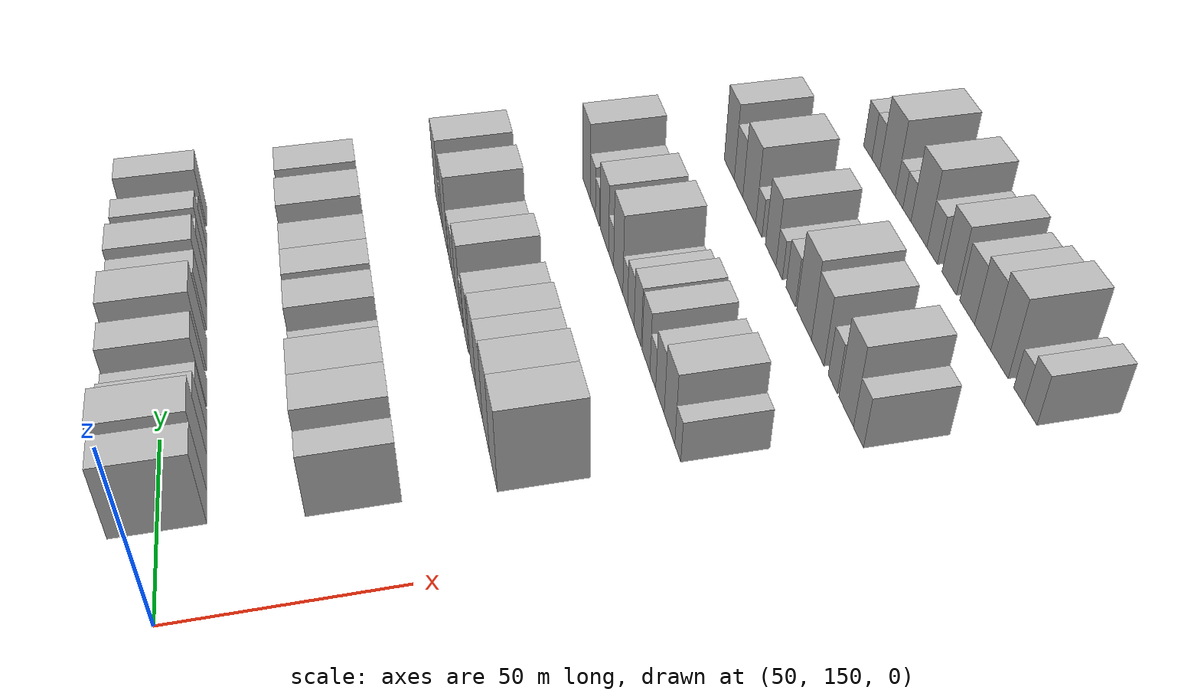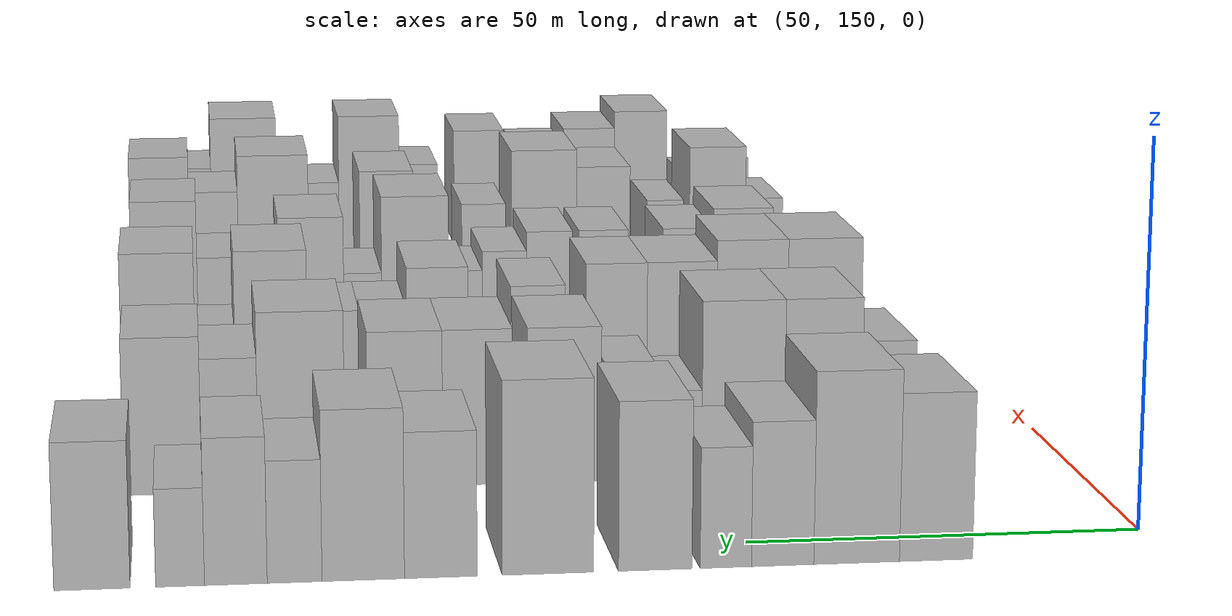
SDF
<sdf version="1.6">
 <world name="default">
  <model name="building_87">
   <static>1</static>
   <pose>50.0000 178.3747 0 0.000000 0.000000 0.000000</pose>
   <link name="link">
    <pose>0 0 10.50 0 0 0</pose>
    <collision name="collision"><geometry><box><size>20.0000 9.0780 21.0000</size></box></geometry></collision>
    <visual name="visual">
     <cast_shadows>0</cast_shadows>
     <geometry><box><size>20.0000 9.0780 21.0000</size></box></geometry>
     <material>
      <script>
       <uri>model://HANNAS_wall/materials/scripts</uri>
       <uri>model://HANNAS_wall/materials/textures</uri>
       <name>vrc/HANNAS_wall</name>
      </script>
     </material>
    </visual>
   </link>
  </model>
  <model name="building_88">
   <static>1</static>
   <pose>50.0000 188.1990 0 0.000000 0.000000 0.000000</pose>
   <link name="link">
    <pose>0 0 12.00 0 0 0</pose>
    <collision name="collision"><geometry><box><size>20.0000 10.5706 24.0000</size></box></geometry></collision>
    <visual name="visual">
     <cast_shadows>0</cast_shadows>
     <geometry><box><size>20.0000 10.5706 24.0000</size></box></geometry>
     <material>
      <script>
       <uri>model://HANNAS_wall/materials/scripts</uri>
       <uri>model://HANNAS_wall/materials/textures</uri>
       <name>vrc/HANNAS_wall</name>
      </script>
     </material>
    </visual>
   </link>
  </model>
  <model name="building_89">
   <static>1</static>
   <pose>50.0000 197.3126 0 0.000000 0.000000 0.000000</pose>
   <link name="link">
    <pose>0 0 9.00 0 0 0</pose>
    <collision name="collision"><geometry><box><size>20.0000 7.6567 18.0000</size></box></geometry></collision>
    <visual name="visual">
     <cast_shadows>0</cast_shadows>
     <geometry><box><size>20.0000 7.6567 18.0000</size></box></geometry>
     <material>
      <script>
       <uri>model://HANNAS_wall/materials/scripts</uri>
       <uri>model://HANNAS_wall/materials/textures</uri>
       <name>vrc/HANNAS_wall</name>
      </script>
     </material>
    </visual>
   </link>
  </model>
  <model name="building_90">
   <static>1</static>
   <pose>50.0000 204.2741 0 0.000000 0.000000 0.000000</pose>
   <link name="link">
    <pose>0 0 7.50 0 0 0</pose>
    <collision name="collision"><geometry><box><size>20.0000 6.2663 15.0000</size></box></geometry></collision>
    <visual name="visual">
     <cast_shadows>0</cast_shadows>
     <geometry><box><size>20.0000 6.2663 15.0000</size></box></geometry>
     <material>
      <script>
       <uri>model://HANNAS_wall/materials/scripts</uri>
       <uri>model://HANNAS_wall/materials/textures</uri>
       <name>vrc/HANNAS_wall</name>
      </script>
     </material>
    </visual>
   </link>
  </model>
  <model name="building_91">
   <static>1</static>
   <pose>50.0000 212.8773 0 0.000000 0.000000 0.000000</pose>
   <link name="link">
    <pose>0 0 10.50 0 0 0</pose>
    <collision name="collision"><geometry><box><size>20.0000 8.9400 21.0000</size></box></geometry></collision>
    <visual name="visual">
     <cast_shadows>0</cast_shadows>
     <geometry><box><size>20.0000 8.9400 21.0000</size></box></geometry>
     <material>
      <script>
       <uri>model://HANNAS_wall/materials/scripts</uri>
       <uri>model://HANNAS_wall/materials/textures</uri>
       <name>vrc/HANNAS_wall</name>
      </script>
     </material>
    </visual>
   </link>
  </model>
  <model name="building_92">
   <static>1</static>
   <pose>50.0000 225.8697 0 0.000000 0.000000 0.000000</pose>
   <link name="link">
    <pose>0 0 12.00 0 0 0</pose>
    <collision name="collision"><geometry><box><size>20.0000 11.0448 24.0000</size></box></geometry></collision>
    <visual name="visual">
     <cast_shadows>0</cast_shadows>
     <geometry><box><size>20.0000 11.0448 24.0000</size></box></geometry>
     <material>
      <script>
       <uri>model://HANNAS_wall/materials/scripts</uri>
       <uri>model://HANNAS_wall/materials/textures</uri>
       <name>vrc/HANNAS_wall</name>
      </script>
     </material>
    </visual>
   </link>
  </model>
  <model name="building_93">
   <static>1</static>
   <pose>50.0000 238.7472 0 0.000000 0.000000 0.000000</pose>
   <link name="link">
    <pose>0 0 9.00 0 0 0</pose>
    <collision name="collision"><geometry><box><size>20.0000 8.7102 18.0000</size></box></geometry></collision>
    <visual name="visual">
     <cast_shadows>0</cast_shadows>
     <geometry><box><size>20.0000 8.7102 18.0000</size></box></geometry>
     <material>
      <script>
       <uri>model://HANNAS_wall/materials/scripts</uri>
       <uri>model://HANNAS_wall/materials/textures</uri>
       <name>vrc/HANNAS_wall</name>
      </script>
     </material>
    </visual>
   </link>
  </model>
  <model name="building_94">
   <static>1</static>
   <pose>50.0000 248.0117 0 0.000000 0.000000 0.000000</pose>
   <link name="link">
    <pose>0 0 10.50 0 0 0</pose>
    <collision name="collision"><geometry><box><size>20.0000 9.8189 21.0000</size></box></geometry></collision>
    <visual name="visual">
     <cast_shadows>0</cast_shadows>
     <geometry><box><size>20.0000 9.8189 21.0000</size></box></geometry>
     <material>
      <script>
       <uri>model://HANNAS_wall/materials/scripts</uri>
       <uri>model://HANNAS_wall/materials/textures</uri>
       <name>vrc/HANNAS_wall</name>
      </script>
     </material>
    </visual>
   </link>
  </model>
  <model name="building_95">
   <static>1</static>
   <pose>50.0000 256.1709 0 0.000000 0.000000 0.000000</pose>
   <link name="link">
    <pose>0 0 7.50 0 0 0</pose>
    <collision name="collision"><geometry><box><size>20.0000 6.4995 15.0000</size></box></geometry></collision>
    <visual name="visual">
     <cast_shadows>0</cast_shadows>
     <geometry><box><size>20.0000 6.4995 15.0000</size></box></geometry>
     <material>
      <script>
       <uri>model://HANNAS_wall/materials/scripts</uri>
       <uri>model://HANNAS_wall/materials/textures</uri>
       <name>vrc/HANNAS_wall</name>
      </script>
     </material>
    </visual>
   </link>
  </model>
  <model name="building_96">
   <static>1</static>
   <pose>50.0000 263.1262 0 0.000000 0.000000 0.000000</pose>
   <link name="link">
    <pose>0 0 9.00 0 0 0</pose>
    <collision name="collision"><geometry><box><size>20.0000 7.4109 18.0000</size></box></geometry></collision>
    <visual name="visual">
     <cast_shadows>0</cast_shadows>
     <geometry><box><size>20.0000 7.4109 18.0000</size></box></geometry>
     <material>
      <script>
       <uri>model://HANNAS_wall/materials/scripts</uri>
       <uri>model://HANNAS_wall/materials/textures</uri>
       <name>vrc/HANNAS_wall</name>
      </script>
     </material>
    </visual>
   </link>
  </model>
  <model name="building_97">
   <static>1</static>
   <pose>50.0000 269.6995 0 0.000000 0.000000 0.000000</pose>
   <link name="link">
    <pose>0 0 6.00 0 0 0</pose>
    <collision name="collision"><geometry><box><size>20.0000 5.7357 12.0000</size></box></geometry></collision>
    <visual name="visual">
     <cast_shadows>0</cast_shadows>
     <geometry><box><size>20.0000 5.7357 12.0000</size></box></geometry>
     <material>
      <script>
       <uri>model://HANNAS_wall/materials/scripts</uri>
       <uri>model://HANNAS_wall/materials/textures</uri>
       <name>vrc/HANNAS_wall</name>
      </script>
     </material>
    </visual>
   </link>
  </model>
  <model name="building_98">
   <static>1</static>
   <pose>50.0000 280.0280 0 0.000000 0.000000 0.000000</pose>
   <link name="link">
    <pose>0 0 9.00 0 0 0</pose>
    <collision name="collision"><geometry><box><size>20.0000 8.9214 18.0000</size></box></geometry></collision>
    <visual name="visual">
     <cast_shadows>0</cast_shadows>
     <geometry><box><size>20.0000 8.9214 18.0000</size></box></geometry>
     <material>
      <script>
       <uri>model://HANNAS_wall/materials/scripts</uri>
       <uri>model://HANNAS_wall/materials/textures</uri>
       <name>vrc/HANNAS_wall</name>
      </script>
     </material>
    </visual>
   </link>
  </model>
  <model name="building_219">
   <static>1</static>
   <pose>90.0000 175.3694 0 0.000000 0.000000 0.000000</pose>
   <link name="link">
    <pose>0 0 9.00 0 0 0</pose>
    <collision name="collision"><geometry><box><size>20.0000 7.3068 18.0000</size></box></geometry></collision>
    <visual name="visual">
     <cast_shadows>0</cast_shadows>
     <geometry><box><size>20.0000 7.3068 18.0000</size></box></geometry>
     <material>
      <script>
       <uri>model://HANNAS_wall/materials/scripts</uri>
       <uri>model://HANNAS_wall/materials/textures</uri>
       <name>vrc/HANNAS_wall</name>
      </script>
     </material>
    </visual>
   </link>
  </model>
  <model name="building_220">
   <static>1</static>
   <pose>90.0000 184.2581 0 0.000000 0.000000 0.000000</pose>
   <link name="link">
    <pose>0 0 12.00 0 0 0</pose>
    <collision name="collision"><geometry><box><size>20.0000 10.4707 24.0000</size></box></geometry></collision>
    <visual name="visual">
     <cast_shadows>0</cast_shadows>
     <geometry><box><size>20.0000 10.4707 24.0000</size></box></geometry>
     <material>
      <script>
       <uri>model://HANNAS_wall/materials/scripts</uri>
       <uri>model://HANNAS_wall/materials/textures</uri>
       <name>vrc/HANNAS_wall</name>
      </script>
     </material>
    </visual>
   </link>
  </model>
  <model name="building_221">
   <static>1</static>
   <pose>90.0000 195.0638 0 0.000000 0.000000 0.000000</pose>
   <link name="link">
    <pose>0 0 12.00 0 0 0</pose>
    <collision name="collision"><geometry><box><size>20.0000 11.1407 24.0000</size></box></geometry></collision>
    <visual name="visual">
     <cast_shadows>0</cast_shadows>
     <geometry><box><size>20.0000 11.1407 24.0000</size></box></geometry>
     <material>
      <script>
       <uri>model://HANNAS_wall/materials/scripts</uri>
       <uri>model://HANNAS_wall/materials/textures</uri>
       <name>vrc/HANNAS_wall</name>
      </script>
     </material>
    </visual>
   </link>
  </model>
  <model name="building_222">
   <static>1</static>
   <pose>90.0000 203.5149 0 0.000000 0.000000 0.000000</pose>
   <link name="link">
    <pose>0 0 6.00 0 0 0</pose>
    <collision name="collision"><geometry><box><size>20.0000 5.7615 12.0000</size></box></geometry></collision>
    <visual name="visual">
     <cast_shadows>0</cast_shadows>
     <geometry><box><size>20.0000 5.7615 12.0000</size></box></geometry>
     <material>
      <script>
       <uri>model://HANNAS_wall/materials/scripts</uri>
       <uri>model://HANNAS_wall/materials/textures</uri>
       <name>vrc/HANNAS_wall</name>
      </script>
     </material>
    </visual>
   </link>
  </model>
  <model name="building_223">
   <static>1</static>
   <pose>90.0000 209.7560 0 0.000000 0.000000 0.000000</pose>
   <link name="link">
    <pose>0 0 7.50 0 0 0</pose>
    <collision name="collision"><geometry><box><size>20.0000 6.7207 15.0000</size></box></geometry></collision>
    <visual name="visual">
     <cast_shadows>0</cast_shadows>
     <geometry><box><size>20.0000 6.7207 15.0000</size></box></geometry>
     <material>
      <script>
       <uri>model://HANNAS_wall/materials/scripts</uri>
       <uri>model://HANNAS_wall/materials/textures</uri>
       <name>vrc/HANNAS_wall</name>
      </script>
     </material>
    </visual>
   </link>
  </model>
  <model name="building_224">
   <static>1</static>
   <pose>90.0000 219.0186 0 0.000000 0.000000 0.000000</pose>
   <link name="link">
    <pose>0 0 10.50 0 0 0</pose>
    <collision name="collision"><geometry><box><size>20.0000 9.8047 21.0000</size></box></geometry></collision>
    <visual name="visual">
     <cast_shadows>0</cast_shadows>
     <geometry><box><size>20.0000 9.8047 21.0000</size></box></geometry>
     <material>
      <script>
       <uri>model://HANNAS_wall/materials/scripts</uri>
       <uri>model://HANNAS_wall/materials/textures</uri>
       <name>vrc/HANNAS_wall</name>
      </script>
     </material>
    </visual>
   </link>
  </model>
  <model name="building_225">
   <static>1</static>
   <pose>90.0000 230.5585 0 0.000000 0.000000 0.000000</pose>
   <link name="link">
    <pose>0 0 10.50 0 0 0</pose>
    <collision name="collision"><geometry><box><size>20.0000 9.2750 21.0000</size></box></geometry></collision>
    <visual name="visual">
     <cast_shadows>0</cast_shadows>
     <geometry><box><size>20.0000 9.2750 21.0000</size></box></geometry>
     <material>
      <script>
       <uri>model://HANNAS_wall/materials/scripts</uri>
       <uri>model://HANNAS_wall/materials/textures</uri>
       <name>vrc/HANNAS_wall</name>
      </script>
     </material>
    </visual>
   </link>
  </model>
  <model name="building_226">
   <static>1</static>
   <pose>90.0000 240.1364 0 0.000000 0.000000 0.000000</pose>
   <link name="link">
    <pose>0 0 10.50 0 0 0</pose>
    <collision name="collision"><geometry><box><size>20.0000 9.8808 21.0000</size></box></geometry></collision>
    <visual name="visual">
     <cast_shadows>0</cast_shadows>
     <geometry><box><size>20.0000 9.8808 21.0000</size></box></geometry>
     <material>
      <script>
       <uri>model://HANNAS_wall/materials/scripts</uri>
       <uri>model://HANNAS_wall/materials/textures</uri>
       <name>vrc/HANNAS_wall</name>
      </script>
     </material>
    </visual>
   </link>
  </model>
  <model name="building_227">
   <static>1</static>
   <pose>90.0000 253.7581 0 0.000000 0.000000 0.000000</pose>
   <link name="link">
    <pose>0 0 12.00 0 0 0</pose>
    <collision name="collision"><geometry><box><size>20.0000 11.3627 24.0000</size></box></geometry></collision>
    <visual name="visual">
     <cast_shadows>0</cast_shadows>
     <geometry><box><size>20.0000 11.3627 24.0000</size></box></geometry>
     <material>
      <script>
       <uri>model://HANNAS_wall/materials/scripts</uri>
       <uri>model://HANNAS_wall/materials/textures</uri>
       <name>vrc/HANNAS_wall</name>
      </script>
     </material>
    </visual>
   </link>
  </model>
  <model name="building_228">
   <static>1</static>
   <pose>90.0000 263.1406 0 0.000000 0.000000 0.000000</pose>
   <link name="link">
    <pose>0 0 9.00 0 0 0</pose>
    <collision name="collision"><geometry><box><size>20.0000 7.4023 18.0000</size></box></geometry></collision>
    <visual name="visual">
     <cast_shadows>0</cast_shadows>
     <geometry><box><size>20.0000 7.4023 18.0000</size></box></geometry>
     <material>
      <script>
       <uri>model://HANNAS_wall/materials/scripts</uri>
       <uri>model://HANNAS_wall/materials/textures</uri>
       <name>vrc/HANNAS_wall</name>
      </script>
     </material>
    </visual>
   </link>
  </model>
  <model name="building_229">
   <static>1</static>
   <pose>90.0000 271.8933 0 0.000000 0.000000 0.000000</pose>
   <link name="link">
    <pose>0 0 10.50 0 0 0</pose>
    <collision name="collision"><geometry><box><size>20.0000 10.1031 21.0000</size></box></geometry></collision>
    <visual name="visual">
     <cast_shadows>0</cast_shadows>
     <geometry><box><size>20.0000 10.1031 21.0000</size></box></geometry>
     <material>
      <script>
       <uri>model://HANNAS_wall/materials/scripts</uri>
       <uri>model://HANNAS_wall/materials/textures</uri>
       <name>vrc/HANNAS_wall</name>
      </script>
     </material>
    </visual>
   </link>
  </model>
  <model name="building_349">
   <static>1</static>
   <pose>130.0000 175.9488 0 0.000000 0.000000 0.000000</pose>
   <link name="link">
    <pose>0 0 12.00 0 0 0</pose>
    <collision name="collision"><geometry><box><size>20.0000 10.9730 24.0000</size></box></geometry></collision>
    <visual name="visual">
     <cast_shadows>0</cast_shadows>
     <geometry><box><size>20.0000 10.9730 24.0000</size></box></geometry>
     <material>
      <script>
       <uri>model://HANNAS_wall/materials/scripts</uri>
       <uri>model://HANNAS_wall/materials/textures</uri>
       <name>vrc/HANNAS_wall</name>
      </script>
     </material>
    </visual>
   </link>
  </model>
  <model name="building_350">
   <static>1</static>
   <pose>130.0000 186.6604 0 0.000000 0.000000 0.000000</pose>
   <link name="link">
    <pose>0 0 12.00 0 0 0</pose>
    <collision name="collision"><geometry><box><size>20.0000 10.4503 24.0000</size></box></geometry></collision>
    <visual name="visual">
     <cast_shadows>0</cast_shadows>
     <geometry><box><size>20.0000 10.4503 24.0000</size></box></geometry>
     <material>
      <script>
       <uri>model://HANNAS_wall/materials/scripts</uri>
       <uri>model://HANNAS_wall/materials/textures</uri>
       <name>vrc/HANNAS_wall</name>
      </script>
     </material>
    </visual>
   </link>
  </model>
  <model name="building_351">
   <static>1</static>
   <pose>130.0000 197.0051 0 0.000000 0.000000 0.000000</pose>
   <link name="link">
    <pose>0 0 10.50 0 0 0</pose>
    <collision name="collision"><geometry><box><size>20.0000 10.2392 21.0000</size></box></geometry></collision>
    <visual name="visual">
     <cast_shadows>0</cast_shadows>
     <geometry><box><size>20.0000 10.2392 21.0000</size></box></geometry>
     <material>
      <script>
       <uri>model://HANNAS_wall/materials/scripts</uri>
       <uri>model://HANNAS_wall/materials/textures</uri>
       <name>vrc/HANNAS_wall</name>
      </script>
     </material>
    </visual>
   </link>
  </model>
  <model name="building_352">
   <static>1</static>
   <pose>130.0000 206.5875 0 0.000000 0.000000 0.000000</pose>
   <link name="link">
    <pose>0 0 10.50 0 0 0</pose>
    <collision name="collision"><geometry><box><size>20.0000 8.9256 21.0000</size></box></geometry></collision>
    <visual name="visual">
     <cast_shadows>0</cast_shadows>
     <geometry><box><size>20.0000 8.9256 21.0000</size></box></geometry>
     <material>
      <script>
       <uri>model://HANNAS_wall/materials/scripts</uri>
       <uri>model://HANNAS_wall/materials/textures</uri>
       <name>vrc/HANNAS_wall</name>
      </script>
     </material>
    </visual>
   </link>
  </model>
  <model name="building_353">
   <static>1</static>
   <pose>130.0000 218.0431 0 0.000000 0.000000 0.000000</pose>
   <link name="link">
    <pose>0 0 9.00 0 0 0</pose>
    <collision name="collision"><geometry><box><size>20.0000 7.9856 18.0000</size></box></geometry></collision>
    <visual name="visual">
     <cast_shadows>0</cast_shadows>
     <geometry><box><size>20.0000 7.9856 18.0000</size></box></geometry>
     <material>
      <script>
       <uri>model://HANNAS_wall/materials/scripts</uri>
       <uri>model://HANNAS_wall/materials/textures</uri>
       <name>vrc/HANNAS_wall</name>
      </script>
     </material>
    </visual>
   </link>
  </model>
  <model name="building_354">
   <static>1</static>
   <pose>130.0000 225.5867 0 0.000000 0.000000 0.000000</pose>
   <link name="link">
    <pose>0 0 6.00 0 0 0</pose>
    <collision name="collision"><geometry><box><size>20.0000 5.1015 12.0000</size></box></geometry></collision>
    <visual name="visual">
     <cast_shadows>0</cast_shadows>
     <geometry><box><size>20.0000 5.1015 12.0000</size></box></geometry>
     <material>
      <script>
       <uri>model://HANNAS_wall/materials/scripts</uri>
       <uri>model://HANNAS_wall/materials/textures</uri>
       <name>vrc/HANNAS_wall</name>
      </script>
     </material>
    </visual>
   </link>
  </model>
  <model name="building_355">
   <static>1</static>
   <pose>130.0000 232.5642 0 0.000000 0.000000 0.000000</pose>
   <link name="link">
    <pose>0 0 10.50 0 0 0</pose>
    <collision name="collision"><geometry><box><size>20.0000 8.8535 21.0000</size></box></geometry></collision>
    <visual name="visual">
     <cast_shadows>0</cast_shadows>
     <geometry><box><size>20.0000 8.8535 21.0000</size></box></geometry>
     <material>
      <script>
       <uri>model://HANNAS_wall/materials/scripts</uri>
       <uri>model://HANNAS_wall/materials/textures</uri>
       <name>vrc/HANNAS_wall</name>
      </script>
     </material>
    </visual>
   </link>
  </model>
  <model name="building_356">
   <static>1</static>
   <pose>130.0000 240.4110 0 0.000000 0.000000 0.000000</pose>
   <link name="link">
    <pose>0 0 7.50 0 0 0</pose>
    <collision name="collision"><geometry><box><size>20.0000 6.8402 15.0000</size></box></geometry></collision>
    <visual name="visual">
     <cast_shadows>0</cast_shadows>
     <geometry><box><size>20.0000 6.8402 15.0000</size></box></geometry>
     <material>
      <script>
       <uri>model://HANNAS_wall/materials/scripts</uri>
       <uri>model://HANNAS_wall/materials/textures</uri>
       <name>vrc/HANNAS_wall</name>
      </script>
     </material>
    </visual>
   </link>
  </model>
  <model name="building_357">
   <static>1</static>
   <pose>130.0000 247.0475 0 0.000000 0.000000 0.000000</pose>
   <link name="link">
    <pose>0 0 7.50 0 0 0</pose>
    <collision name="collision"><geometry><box><size>20.0000 6.4327 15.0000</size></box></geometry></collision>
    <visual name="visual">
     <cast_shadows>0</cast_shadows>
     <geometry><box><size>20.0000 6.4327 15.0000</size></box></geometry>
     <material>
      <script>
       <uri>model://HANNAS_wall/materials/scripts</uri>
       <uri>model://HANNAS_wall/materials/textures</uri>
       <name>vrc/HANNAS_wall</name>
      </script>
     </material>
    </visual>
   </link>
  </model>
  <model name="building_358">
   <static>1</static>
   <pose>130.0000 256.4493 0 0.000000 0.000000 0.000000</pose>
   <link name="link">
    <pose>0 0 12.00 0 0 0</pose>
    <collision name="collision"><geometry><box><size>20.0000 10.3709 24.0000</size></box></geometry></collision>
    <visual name="visual">
     <cast_shadows>0</cast_shadows>
     <geometry><box><size>20.0000 10.3709 24.0000</size></box></geometry>
     <material>
      <script>
       <uri>model://HANNAS_wall/materials/scripts</uri>
       <uri>model://HANNAS_wall/materials/textures</uri>
       <name>vrc/HANNAS_wall</name>
      </script>
     </material>
    </visual>
   </link>
  </model>
  <model name="building_359">
   <static>1</static>
   <pose>130.0000 264.4469 0 0.000000 0.000000 0.000000</pose>
   <link name="link">
    <pose>0 0 6.00 0 0 0</pose>
    <collision name="collision"><geometry><box><size>20.0000 5.6244 12.0000</size></box></geometry></collision>
    <visual name="visual">
     <cast_shadows>0</cast_shadows>
     <geometry><box><size>20.0000 5.6244 12.0000</size></box></geometry>
     <material>
      <script>
       <uri>model://HANNAS_wall/materials/scripts</uri>
       <uri>model://HANNAS_wall/materials/textures</uri>
       <name>vrc/HANNAS_wall</name>
      </script>
     </material>
    </visual>
   </link>
  </model>
  <model name="building_360">
   <static>1</static>
   <pose>130.0000 272.4987 0 0.000000 0.000000 0.000000</pose>
   <link name="link">
    <pose>0 0 12.00 0 0 0</pose>
    <collision name="collision"><geometry><box><size>20.0000 10.4792 24.0000</size></box></geometry></collision>
    <visual name="visual">
     <cast_shadows>0</cast_shadows>
     <geometry><box><size>20.0000 10.4792 24.0000</size></box></geometry>
     <material>
      <script>
       <uri>model://HANNAS_wall/materials/scripts</uri>
       <uri>model://HANNAS_wall/materials/textures</uri>
       <name>vrc/HANNAS_wall</name>
      </script>
     </material>
    </visual>
   </link>
  </model>
  <model name="building_486">
   <static>1</static>
   <pose>170.0000 173.5133 0 0.000000 0.000000 0.000000</pose>
   <link name="link">
    <pose>0 0 6.00 0 0 0</pose>
    <collision name="collision"><geometry><box><size>20.0000 5.2123 12.0000</size></box></geometry></collision>
    <visual name="visual">
     <cast_shadows>0</cast_shadows>
     <geometry><box><size>20.0000 5.2123 12.0000</size></box></geometry>
     <material>
      <script>
       <uri>model://HANNAS_wall/materials/scripts</uri>
       <uri>model://HANNAS_wall/materials/textures</uri>
       <name>vrc/HANNAS_wall</name>
      </script>
     </material>
    </visual>
   </link>
  </model>
  <model name="building_487">
   <static>1</static>
   <pose>170.0000 180.9115 0 0.000000 0.000000 0.000000</pose>
   <link name="link">
    <pose>0 0 10.50 0 0 0</pose>
    <collision name="collision"><geometry><box><size>20.0000 9.5840 21.0000</size></box></geometry></collision>
    <visual name="visual">
     <cast_shadows>0</cast_shadows>
     <geometry><box><size>20.0000 9.5840 21.0000</size></box></geometry>
     <material>
      <script>
       <uri>model://HANNAS_wall/materials/scripts</uri>
       <uri>model://HANNAS_wall/materials/textures</uri>
       <name>vrc/HANNAS_wall</name>
      </script>
     </material>
    </visual>
   </link>
  </model>
  <model name="building_488">
   <static>1</static>
   <pose>170.0000 189.6922 0 0.000000 0.000000 0.000000</pose>
   <link name="link">
    <pose>0 0 9.00 0 0 0</pose>
    <collision name="collision"><geometry><box><size>20.0000 7.9773 18.0000</size></box></geometry></collision>
    <visual name="visual">
     <cast_shadows>0</cast_shadows>
     <geometry><box><size>20.0000 7.9773 18.0000</size></box></geometry>
     <material>
      <script>
       <uri>model://HANNAS_wall/materials/scripts</uri>
       <uri>model://HANNAS_wall/materials/textures</uri>
       <name>vrc/HANNAS_wall</name>
      </script>
     </material>
    </visual>
   </link>
  </model>
  <model name="building_489">
   <static>1</static>
   <pose>170.0000 196.4712 0 0.000000 0.000000 0.000000</pose>
   <link name="link">
    <pose>0 0 6.00 0 0 0</pose>
    <collision name="collision"><geometry><box><size>20.0000 5.5807 12.0000</size></box></geometry></collision>
    <visual name="visual">
     <cast_shadows>0</cast_shadows>
     <geometry><box><size>20.0000 5.5807 12.0000</size></box></geometry>
     <material>
      <script>
       <uri>model://HANNAS_wall/materials/scripts</uri>
       <uri>model://HANNAS_wall/materials/textures</uri>
       <name>vrc/HANNAS_wall</name>
      </script>
     </material>
    </visual>
   </link>
  </model>
  <model name="building_490">
   <static>1</static>
   <pose>170.0000 203.1555 0 0.000000 0.000000 0.000000</pose>
   <link name="link">
    <pose>0 0 9.00 0 0 0</pose>
    <collision name="collision"><geometry><box><size>20.0000 7.7880 18.0000</size></box></geometry></collision>
    <visual name="visual">
     <cast_shadows>0</cast_shadows>
     <geometry><box><size>20.0000 7.7880 18.0000</size></box></geometry>
     <material>
      <script>
       <uri>model://HANNAS_wall/materials/scripts</uri>
       <uri>model://HANNAS_wall/materials/textures</uri>
       <name>vrc/HANNAS_wall</name>
      </script>
     </material>
    </visual>
   </link>
  </model>
  <model name="building_491">
   <static>1</static>
   <pose>170.0000 211.6984 0 0.000000 0.000000 0.000000</pose>
   <link name="link">
    <pose>0 0 9.00 0 0 0</pose>
    <collision name="collision"><geometry><box><size>20.0000 7.2979 18.0000</size></box></geometry></collision>
    <visual name="visual">
     <cast_shadows>0</cast_shadows>
     <geometry><box><size>20.0000 7.2979 18.0000</size></box></geometry>
     <material>
      <script>
       <uri>model://HANNAS_wall/materials/scripts</uri>
       <uri>model://HANNAS_wall/materials/textures</uri>
       <name>vrc/HANNAS_wall</name>
      </script>
     </material>
    </visual>
   </link>
  </model>
  <model name="building_492">
   <static>1</static>
   <pose>170.0000 218.8263 0 0.000000 0.000000 0.000000</pose>
   <link name="link">
    <pose>0 0 7.50 0 0 0</pose>
    <collision name="collision"><geometry><box><size>20.0000 6.9579 15.0000</size></box></geometry></collision>
    <visual name="visual">
     <cast_shadows>0</cast_shadows>
     <geometry><box><size>20.0000 6.9579 15.0000</size></box></geometry>
     <material>
      <script>
       <uri>model://HANNAS_wall/materials/scripts</uri>
       <uri>model://HANNAS_wall/materials/textures</uri>
       <name>vrc/HANNAS_wall</name>
      </script>
     </material>
    </visual>
   </link>
  </model>
  <model name="building_493">
   <static>1</static>
   <pose>170.0000 224.9463 0 0.000000 0.000000 0.000000</pose>
   <link name="link">
    <pose>0 0 6.00 0 0 0</pose>
    <collision name="collision"><geometry><box><size>20.0000 5.2821 12.0000</size></box></geometry></collision>
    <visual name="visual">
     <cast_shadows>0</cast_shadows>
     <geometry><box><size>20.0000 5.2821 12.0000</size></box></geometry>
     <material>
      <script>
       <uri>model://HANNAS_wall/materials/scripts</uri>
       <uri>model://HANNAS_wall/materials/textures</uri>
       <name>vrc/HANNAS_wall</name>
      </script>
     </material>
    </visual>
   </link>
  </model>
  <model name="building_494">
   <static>1</static>
   <pose>170.0000 232.8316 0 0.000000 0.000000 0.000000</pose>
   <link name="link">
    <pose>0 0 12.00 0 0 0</pose>
    <collision name="collision"><geometry><box><size>20.0000 10.4885 24.0000</size></box></geometry></collision>
    <visual name="visual">
     <cast_shadows>0</cast_shadows>
     <geometry><box><size>20.0000 10.4885 24.0000</size></box></geometry>
     <material>
      <script>
       <uri>model://HANNAS_wall/materials/scripts</uri>
       <uri>model://HANNAS_wall/materials/textures</uri>
       <name>vrc/HANNAS_wall</name>
      </script>
     </material>
    </visual>
   </link>
  </model>
  <model name="building_495">
   <static>1</static>
   <pose>170.0000 241.0405 0 0.000000 0.000000 0.000000</pose>
   <link name="link">
    <pose>0 0 6.00 0 0 0</pose>
    <collision name="collision"><geometry><box><size>20.0000 5.9293 12.0000</size></box></geometry></collision>
    <visual name="visual">
     <cast_shadows>0</cast_shadows>
     <geometry><box><size>20.0000 5.9293 12.0000</size></box></geometry>
     <material>
      <script>
       <uri>model://HANNAS_wall/materials/scripts</uri>
       <uri>model://HANNAS_wall/materials/textures</uri>
       <name>vrc/HANNAS_wall</name>
      </script>
     </material>
    </visual>
   </link>
  </model>
  <model name="building_496">
   <static>1</static>
   <pose>170.0000 249.0771 0 0.000000 0.000000 0.000000</pose>
   <link name="link">
    <pose>0 0 10.50 0 0 0</pose>
    <collision name="collision"><geometry><box><size>20.0000 10.1438 21.0000</size></box></geometry></collision>
    <visual name="visual">
     <cast_shadows>0</cast_shadows>
     <geometry><box><size>20.0000 10.1438 21.0000</size></box></geometry>
     <material>
      <script>
       <uri>model://HANNAS_wall/materials/scripts</uri>
       <uri>model://HANNAS_wall/materials/textures</uri>
       <name>vrc/HANNAS_wall</name>
      </script>
     </material>
    </visual>
   </link>
  </model>
  <model name="building_497">
   <static>1</static>
   <pose>170.0000 257.6764 0 0.000000 0.000000 0.000000</pose>
   <link name="link">
    <pose>0 0 6.00 0 0 0</pose>
    <collision name="collision"><geometry><box><size>20.0000 5.0547 12.0000</size></box></geometry></collision>
    <visual name="visual">
     <cast_shadows>0</cast_shadows>
     <geometry><box><size>20.0000 5.0547 12.0000</size></box></geometry>
     <material>
      <script>
       <uri>model://HANNAS_wall/materials/scripts</uri>
       <uri>model://HANNAS_wall/materials/textures</uri>
       <name>vrc/HANNAS_wall</name>
      </script>
     </material>
    </visual>
   </link>
  </model>
  <model name="building_498">
   <static>1</static>
   <pose>170.0000 263.4415 0 0.000000 0.000000 0.000000</pose>
   <link name="link">
    <pose>0 0 7.50 0 0 0</pose>
    <collision name="collision"><geometry><box><size>20.0000 6.4756 15.0000</size></box></geometry></collision>
    <visual name="visual">
     <cast_shadows>0</cast_shadows>
     <geometry><box><size>20.0000 6.4756 15.0000</size></box></geometry>
     <material>
      <script>
       <uri>model://HANNAS_wall/materials/scripts</uri>
       <uri>model://HANNAS_wall/materials/textures</uri>
       <name>vrc/HANNAS_wall</name>
      </script>
     </material>
    </visual>
   </link>
  </model>
  <model name="building_499">
   <static>1</static>
   <pose>170.0000 271.7407 0 0.000000 0.000000 0.000000</pose>
   <link name="link">
    <pose>0 0 12.00 0 0 0</pose>
    <collision name="collision"><geometry><box><size>20.0000 10.1228 24.0000</size></box></geometry></collision>
    <visual name="visual">
     <cast_shadows>0</cast_shadows>
     <geometry><box><size>20.0000 10.1228 24.0000</size></box></geometry>
     <material>
      <script>
       <uri>model://HANNAS_wall/materials/scripts</uri>
       <uri>model://HANNAS_wall/materials/textures</uri>
       <name>vrc/HANNAS_wall</name>
      </script>
     </material>
    </visual>
   </link>
  </model>
  <model name="building_629">
   <static>1</static>
   <pose>210.0000 170.1546 0 0.000000 0.000000 0.000000</pose>
   <link name="link">
    <pose>0 0 7.50 0 0 0</pose>
    <collision name="collision"><geometry><box><size>20.0000 6.4109 15.0000</size></box></geometry></collision>
    <visual name="visual">
     <cast_shadows>0</cast_shadows>
     <geometry><box><size>20.0000 6.4109 15.0000</size></box></geometry>
     <material>
      <script>
       <uri>model://HANNAS_wall/materials/scripts</uri>
       <uri>model://HANNAS_wall/materials/textures</uri>
       <name>vrc/HANNAS_wall</name>
      </script>
     </material>
    </visual>
   </link>
  </model>
  <model name="building_630">
   <static>1</static>
   <pose>210.0000 178.2022 0 0.000000 0.000000 0.000000</pose>
   <link name="link">
    <pose>0 0 12.00 0 0 0</pose>
    <collision name="collision"><geometry><box><size>20.0000 9.6844 24.0000</size></box></geometry></collision>
    <visual name="visual">
     <cast_shadows>0</cast_shadows>
     <geometry><box><size>20.0000 9.6844 24.0000</size></box></geometry>
     <material>
      <script>
       <uri>model://HANNAS_wall/materials/scripts</uri>
       <uri>model://HANNAS_wall/materials/textures</uri>
       <name>vrc/HANNAS_wall</name>
      </script>
     </material>
    </visual>
   </link>
  </model>
  <model name="building_631">
   <static>1</static>
   <pose>210.0000 187.1664 0 0.000000 0.000000 0.000000</pose>
   <link name="link">
    <pose>0 0 7.50 0 0 0</pose>
    <collision name="collision"><geometry><box><size>20.0000 6.2439 15.0000</size></box></geometry></collision>
    <visual name="visual">
     <cast_shadows>0</cast_shadows>
     <geometry><box><size>20.0000 6.2439 15.0000</size></box></geometry>
     <material>
      <script>
       <uri>model://HANNAS_wall/materials/scripts</uri>
       <uri>model://HANNAS_wall/materials/textures</uri>
       <name>vrc/HANNAS_wall</name>
      </script>
     </material>
    </visual>
   </link>
  </model>
  <model name="building_632">
   <static>1</static>
   <pose>210.0000 197.8502 0 0.000000 0.000000 0.000000</pose>
   <link name="link">
    <pose>0 0 10.50 0 0 0</pose>
    <collision name="collision"><geometry><box><size>20.0000 9.1239 21.0000</size></box></geometry></collision>
    <visual name="visual">
     <cast_shadows>0</cast_shadows>
     <geometry><box><size>20.0000 9.1239 21.0000</size></box></geometry>
     <material>
      <script>
       <uri>model://HANNAS_wall/materials/scripts</uri>
       <uri>model://HANNAS_wall/materials/textures</uri>
       <name>vrc/HANNAS_wall</name>
      </script>
     </material>
    </visual>
   </link>
  </model>
  <model name="building_633">
   <static>1</static>
   <pose>210.0000 207.9811 0 0.000000 0.000000 0.000000</pose>
   <link name="link">
    <pose>0 0 12.00 0 0 0</pose>
    <collision name="collision"><geometry><box><size>20.0000 11.1378 24.0000</size></box></geometry></collision>
    <visual name="visual">
     <cast_shadows>0</cast_shadows>
     <geometry><box><size>20.0000 11.1378 24.0000</size></box></geometry>
     <material>
      <script>
       <uri>model://HANNAS_wall/materials/scripts</uri>
       <uri>model://HANNAS_wall/materials/textures</uri>
       <name>vrc/HANNAS_wall</name>
      </script>
     </material>
    </visual>
   </link>
  </model>
  <model name="building_634">
   <static>1</static>
   <pose>210.0000 218.2656 0 0.000000 0.000000 0.000000</pose>
   <link name="link">
    <pose>0 0 7.50 0 0 0</pose>
    <collision name="collision"><geometry><box><size>20.0000 7.4312 15.0000</size></box></geometry></collision>
    <visual name="visual">
     <cast_shadows>0</cast_shadows>
     <geometry><box><size>20.0000 7.4312 15.0000</size></box></geometry>
     <material>
      <script>
       <uri>model://HANNAS_wall/materials/scripts</uri>
       <uri>model://HANNAS_wall/materials/textures</uri>
       <name>vrc/HANNAS_wall</name>
      </script>
     </material>
    </visual>
   </link>
  </model>
  <model name="building_635">
   <static>1</static>
   <pose>210.0000 227.6113 0 0.000000 0.000000 0.000000</pose>
   <link name="link">
    <pose>0 0 6.00 0 0 0</pose>
    <collision name="collision"><geometry><box><size>20.0000 5.2603 12.0000</size></box></geometry></collision>
    <visual name="visual">
     <cast_shadows>0</cast_shadows>
     <geometry><box><size>20.0000 5.2603 12.0000</size></box></geometry>
     <material>
      <script>
       <uri>model://HANNAS_wall/materials/scripts</uri>
       <uri>model://HANNAS_wall/materials/textures</uri>
       <name>vrc/HANNAS_wall</name>
      </script>
     </material>
    </visual>
   </link>
  </model>
  <model name="building_636">
   <static>1</static>
   <pose>210.0000 234.7338 0 0.000000 0.000000 0.000000</pose>
   <link name="link">
    <pose>0 0 10.50 0 0 0</pose>
    <collision name="collision"><geometry><box><size>20.0000 8.9847 21.0000</size></box></geometry></collision>
    <visual name="visual">
     <cast_shadows>0</cast_shadows>
     <geometry><box><size>20.0000 8.9847 21.0000</size></box></geometry>
     <material>
      <script>
       <uri>model://HANNAS_wall/materials/scripts</uri>
       <uri>model://HANNAS_wall/materials/textures</uri>
       <name>vrc/HANNAS_wall</name>
      </script>
     </material>
    </visual>
   </link>
  </model>
  <model name="building_637">
   <static>1</static>
   <pose>210.0000 245.0219 0 0.000000 0.000000 0.000000</pose>
   <link name="link">
    <pose>0 0 6.00 0 0 0</pose>
    <collision name="collision"><geometry><box><size>20.0000 5.5915 12.0000</size></box></geometry></collision>
    <visual name="visual">
     <cast_shadows>0</cast_shadows>
     <geometry><box><size>20.0000 5.5915 12.0000</size></box></geometry>
     <material>
      <script>
       <uri>model://HANNAS_wall/materials/scripts</uri>
       <uri>model://HANNAS_wall/materials/textures</uri>
       <name>vrc/HANNAS_wall</name>
      </script>
     </material>
    </visual>
   </link>
  </model>
  <model name="building_638">
   <static>1</static>
   <pose>210.0000 253.7149 0 0.000000 0.000000 0.000000</pose>
   <link name="link">
    <pose>0 0 12.00 0 0 0</pose>
    <collision name="collision"><geometry><box><size>20.0000 11.7945 24.0000</size></box></geometry></collision>
    <visual name="visual">
     <cast_shadows>0</cast_shadows>
     <geometry><box><size>20.0000 11.7945 24.0000</size></box></geometry>
     <material>
      <script>
       <uri>model://HANNAS_wall/materials/scripts</uri>
       <uri>model://HANNAS_wall/materials/textures</uri>
       <name>vrc/HANNAS_wall</name>
      </script>
     </material>
    </visual>
   </link>
  </model>
  <model name="building_639">
   <static>1</static>
   <pose>210.0000 263.6816 0 0.000000 0.000000 0.000000</pose>
   <link name="link">
    <pose>0 0 9.00 0 0 0</pose>
    <collision name="collision"><geometry><box><size>20.0000 8.1389 18.0000</size></box></geometry></collision>
    <visual name="visual">
     <cast_shadows>0</cast_shadows>
     <geometry><box><size>20.0000 8.1389 18.0000</size></box></geometry>
     <material>
      <script>
       <uri>model://HANNAS_wall/materials/scripts</uri>
       <uri>model://HANNAS_wall/materials/textures</uri>
       <name>vrc/HANNAS_wall</name>
      </script>
     </material>
    </visual>
   </link>
  </model>
  <model name="building_640">
   <static>1</static>
   <pose>210.0000 272.6583 0 0.000000 0.000000 0.000000</pose>
   <link name="link">
    <pose>0 0 12.00 0 0 0</pose>
    <collision name="collision"><geometry><box><size>20.0000 9.8144 24.0000</size></box></geometry></collision>
    <visual name="visual">
     <cast_shadows>0</cast_shadows>
     <geometry><box><size>20.0000 9.8144 24.0000</size></box></geometry>
     <material>
      <script>
       <uri>model://HANNAS_wall/materials/scripts</uri>
       <uri>model://HANNAS_wall/materials/textures</uri>
       <name>vrc/HANNAS_wall</name>
      </script>
     </material>
    </visual>
   </link>
  </model>
  <model name="building_762">
   <static>1</static>
   <pose>250.0000 169.0189 0 0.000000 0.000000 0.000000</pose>
   <link name="link">
    <pose>0 0 7.50 0 0 0</pose>
    <collision name="collision"><geometry><box><size>20.0000 6.5585 15.0000</size></box></geometry></collision>
    <visual name="visual">
     <cast_shadows>0</cast_shadows>
     <geometry><box><size>20.0000 6.5585 15.0000</size></box></geometry>
     <material>
      <script>
       <uri>model://HANNAS_wall/materials/scripts</uri>
       <uri>model://HANNAS_wall/materials/textures</uri>
       <name>vrc/HANNAS_wall</name>
      </script>
     </material>
    </visual>
   </link>
  </model>
  <model name="building_763">
   <static>1</static>
   <pose>250.0000 175.0707 0 0.000000 0.000000 0.000000</pose>
   <link name="link">
    <pose>0 0 6.00 0 0 0</pose>
    <collision name="collision"><geometry><box><size>20.0000 5.5451 12.0000</size></box></geometry></collision>
    <visual name="visual">
     <cast_shadows>0</cast_shadows>
     <geometry><box><size>20.0000 5.5451 12.0000</size></box></geometry>
     <material>
      <script>
       <uri>model://HANNAS_wall/materials/scripts</uri>
       <uri>model://HANNAS_wall/materials/textures</uri>
       <name>vrc/HANNAS_wall</name>
      </script>
     </material>
    </visual>
   </link>
  </model>
  <model name="building_764">
   <static>1</static>
   <pose>250.0000 185.6610 0 0.000000 0.000000 0.000000</pose>
   <link name="link">
    <pose>0 0 12.00 0 0 0</pose>
    <collision name="collision"><geometry><box><size>20.0000 9.6355 24.0000</size></box></geometry></collision>
    <visual name="visual">
     <cast_shadows>0</cast_shadows>
     <geometry><box><size>20.0000 9.6355 24.0000</size></box></geometry>
     <material>
      <script>
       <uri>model://HANNAS_wall/materials/scripts</uri>
       <uri>model://HANNAS_wall/materials/textures</uri>
       <name>vrc/HANNAS_wall</name>
      </script>
     </material>
    </visual>
   </link>
  </model>
  <model name="building_765">
   <static>1</static>
   <pose>250.0000 195.1398 0 0.000000 0.000000 0.000000</pose>
   <link name="link">
    <pose>0 0 10.50 0 0 0</pose>
    <collision name="collision"><geometry><box><size>20.0000 9.3220 21.0000</size></box></geometry></collision>
    <visual name="visual">
     <cast_shadows>0</cast_shadows>
     <geometry><box><size>20.0000 9.3220 21.0000</size></box></geometry>
     <material>
      <script>
       <uri>model://HANNAS_wall/materials/scripts</uri>
       <uri>model://HANNAS_wall/materials/textures</uri>
       <name>vrc/HANNAS_wall</name>
      </script>
     </material>
    </visual>
   </link>
  </model>
  <model name="building_766">
   <static>1</static>
   <pose>250.0000 204.2901 0 0.000000 0.000000 0.000000</pose>
   <link name="link">
    <pose>0 0 9.00 0 0 0</pose>
    <collision name="collision"><geometry><box><size>20.0000 8.9786 18.0000</size></box></geometry></collision>
    <visual name="visual">
     <cast_shadows>0</cast_shadows>
     <geometry><box><size>20.0000 8.9786 18.0000</size></box></geometry>
     <material>
      <script>
       <uri>model://HANNAS_wall/materials/scripts</uri>
       <uri>model://HANNAS_wall/materials/textures</uri>
       <name>vrc/HANNAS_wall</name>
      </script>
     </material>
    </visual>
   </link>
  </model>
  <model name="building_767">
   <static>1</static>
   <pose>250.0000 215.3196 0 0.000000 0.000000 0.000000</pose>
   <link name="link">
    <pose>0 0 10.50 0 0 0</pose>
    <collision name="collision"><geometry><box><size>20.0000 9.0805 21.0000</size></box></geometry></collision>
    <visual name="visual">
     <cast_shadows>0</cast_shadows>
     <geometry><box><size>20.0000 9.0805 21.0000</size></box></geometry>
     <material>
      <script>
       <uri>model://HANNAS_wall/materials/scripts</uri>
       <uri>model://HANNAS_wall/materials/textures</uri>
       <name>vrc/HANNAS_wall</name>
      </script>
     </material>
    </visual>
   </link>
  </model>
  <model name="building_768">
   <static>1</static>
   <pose>250.0000 226.3320 0 0.000000 0.000000 0.000000</pose>
   <link name="link">
    <pose>0 0 7.50 0 0 0</pose>
    <collision name="collision"><geometry><box><size>20.0000 6.9442 15.0000</size></box></geometry></collision>
    <visual name="visual">
     <cast_shadows>0</cast_shadows>
     <geometry><box><size>20.0000 6.9442 15.0000</size></box></geometry>
     <material>
      <script>
       <uri>model://HANNAS_wall/materials/scripts</uri>
       <uri>model://HANNAS_wall/materials/textures</uri>
       <name>vrc/HANNAS_wall</name>
      </script>
     </material>
    </visual>
   </link>
  </model>
  <model name="building_769">
   <static>1</static>
   <pose>250.0000 235.2764 0 0.000000 0.000000 0.000000</pose>
   <link name="link">
    <pose>0 0 12.00 0 0 0</pose>
    <collision name="collision"><geometry><box><size>20.0000 10.9446 24.0000</size></box></geometry></collision>
    <visual name="visual">
     <cast_shadows>0</cast_shadows>
     <geometry><box><size>20.0000 10.9446 24.0000</size></box></geometry>
     <material>
      <script>
       <uri>model://HANNAS_wall/materials/scripts</uri>
       <uri>model://HANNAS_wall/materials/textures</uri>
       <name>vrc/HANNAS_wall</name>
      </script>
     </material>
    </visual>
   </link>
  </model>
  <model name="building_770">
   <static>1</static>
   <pose>250.0000 243.6268 0 0.000000 0.000000 0.000000</pose>
   <link name="link">
    <pose>0 0 6.00 0 0 0</pose>
    <collision name="collision"><geometry><box><size>20.0000 5.7561 12.0000</size></box></geometry></collision>
    <visual name="visual">
     <cast_shadows>0</cast_shadows>
     <geometry><box><size>20.0000 5.7561 12.0000</size></box></geometry>
     <material>
      <script>
       <uri>model://HANNAS_wall/materials/scripts</uri>
       <uri>model://HANNAS_wall/materials/textures</uri>
       <name>vrc/HANNAS_wall</name>
      </script>
     </material>
    </visual>
   </link>
  </model>
  <model name="building_771">
   <static>1</static>
   <pose>250.0000 249.2343 0 0.000000 0.000000 0.000000</pose>
   <link name="link">
    <pose>0 0 6.00 0 0 0</pose>
    <collision name="collision"><geometry><box><size>20.0000 5.4590 12.0000</size></box></geometry></collision>
    <visual name="visual">
     <cast_shadows>0</cast_shadows>
     <geometry><box><size>20.0000 5.4590 12.0000</size></box></geometry>
     <material>
      <script>
       <uri>model://HANNAS_wall/materials/scripts</uri>
       <uri>model://HANNAS_wall/materials/textures</uri>
       <name>vrc/HANNAS_wall</name>
      </script>
     </material>
    </visual>
   </link>
  </model>
  <model name="building_772">
   <static>1</static>
   <pose>250.0000 257.8343 0 0.000000 0.000000 0.000000</pose>
   <link name="link">
    <pose>0 0 12.00 0 0 0</pose>
    <collision name="collision"><geometry><box><size>20.0000 11.7409 24.0000</size></box></geometry></collision>
    <visual name="visual">
     <cast_shadows>0</cast_shadows>
     <geometry><box><size>20.0000 11.7409 24.0000</size></box></geometry>
     <material>
      <script>
       <uri>model://HANNAS_wall/materials/scripts</uri>
       <uri>model://HANNAS_wall/materials/textures</uri>
       <name>vrc/HANNAS_wall</name>
      </script>
     </material>
    </visual>
   </link>
  </model>
  <model name="building_773">
   <static>1</static>
   <pose>250.0000 266.7087 0 0.000000 0.000000 0.000000</pose>
   <link name="link">
    <pose>0 0 7.50 0 0 0</pose>
    <collision name="collision"><geometry><box><size>20.0000 6.0081 15.0000</size></box></geometry></collision>
    <visual name="visual">
     <cast_shadows>0</cast_shadows>
     <geometry><box><size>20.0000 6.0081 15.0000</size></box></geometry>
     <material>
      <script>
       <uri>model://HANNAS_wall/materials/scripts</uri>
       <uri>model://HANNAS_wall/materials/textures</uri>
       <name>vrc/HANNAS_wall</name>
      </script>
     </material>
    </visual>
   </link>
  </model>
  <model name="building_774">
   <static>1</static>
   <pose>250.0000 272.9340 0 0.000000 0.000000 0.000000</pose>
   <link name="link">
    <pose>0 0 7.50 0 0 0</pose>
    <collision name="collision"><geometry><box><size>20.0000 6.4425 15.0000</size></box></geometry></collision>
    <visual name="visual">
     <cast_shadows>0</cast_shadows>
     <geometry><box><size>20.0000 6.4425 15.0000</size></box></geometry>
     <material>
      <script>
       <uri>model://HANNAS_wall/materials/scripts</uri>
       <uri>model://HANNAS_wall/materials/textures</uri>
       <name>vrc/HANNAS_wall</name>
      </script>
     </material>
    </visual>
   </link>
  </model>
 </world>
</sdf>
